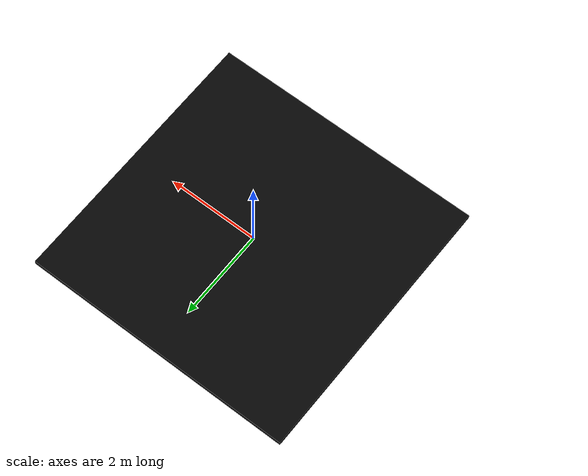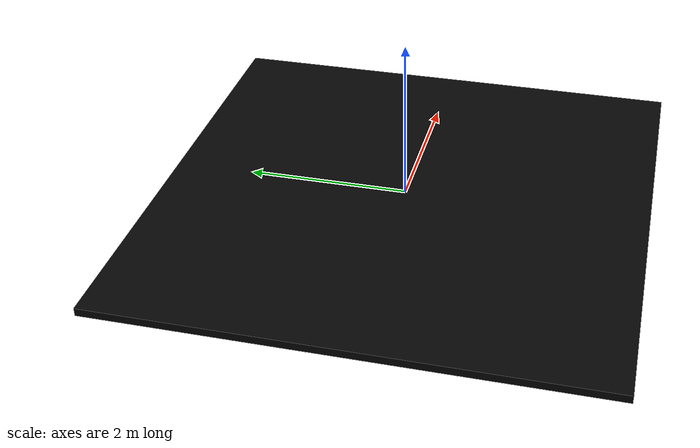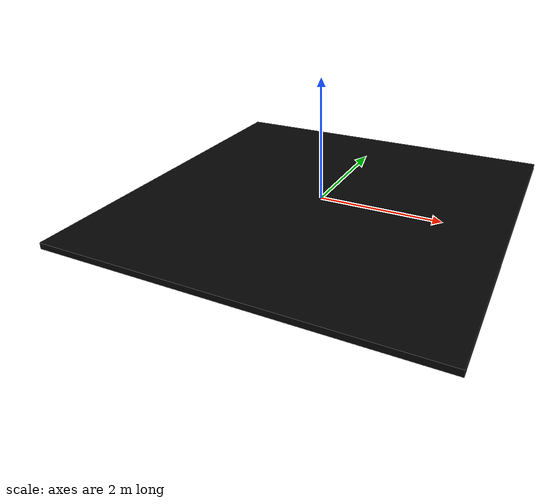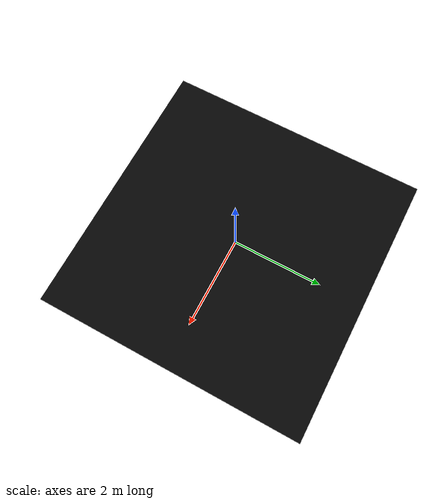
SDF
<?xml version="1.0" ?>
<sdf version="1.6">
  <world name="drive_test">
    <physics name="contact_physics" type="ode">
      <max_step_size>0.004</max_step_size>
      <real_time_update_rate>250</real_time_update_rate>
      <ode>
        <solver>
          <type>quick</type>
          <iters>800</iters>
          <sor>1.0</sor>
        </solver>
        <constraints>
          <cfm>0</cfm>
          <erp>0.2</erp>
          <contact_max_correcting_vel>0.1</contact_max_correcting_vel>
          <contact_surface_layer>0.0001</contact_surface_layer>
        </constraints>
      </ode>
    </physics>
    <light name="sun" type="directional">
      <pose>0 0 8 0 0 0</pose>
      <diffuse>0.8 0.8 0.8 1</diffuse>
      <direction>-0.3 0.2 -1</direction>
    </light>
    <scene>
      <ambient>0.65 0.65 0.65 1</ambient>
      <background>0.80 0.85 0.9 1</background>
      <shadows>true</shadows>
    </scene>
    <model name="field_floor">
      <static>true</static>
      <pose>0 0 0 0 0 0</pose>
      <link name="body">
        <visual name="ground">
          <pose>0 0 -0.05 0 0 0</pose>
          <geometry>
            <box>
              <size>6 6 0.1</size>
            </box>
          </geometry>
          <material>
            <ambient>0.015 0.015 0.015 1</ambient>
            <diffuse>0.015 0.015 0.015 1</diffuse>
          </material>
        </visual>
        <collision name="ground">
          <pose>0 0 -0.05 0 0 0</pose>
          <geometry>
            <box>
              <size>6 6 0.1</size>
            </box>
          </geometry>
          <surface>
            <friction>
              <ode>
                <mu>1.0</mu>
                <mu2>1.0</mu2>
              </ode>
            </friction>
          </surface>
        </collision>
        <sensor name="floor_contacts" type="contact">
          <always_on>true</always_on>
          <update_rate>50</update_rate>
          <contact>
            <collision>ground</collision>
          </contact>
          <plugin name="ground_contact_ros" filename="libgazebo_ros_bumper.so">
            <bumperTopicName>/ground_contacts</bumperTopicName>
            <frameName>world</frameName>
          </plugin>
        </sensor>
      </link>
    </model>
  </world>
</sdf>
